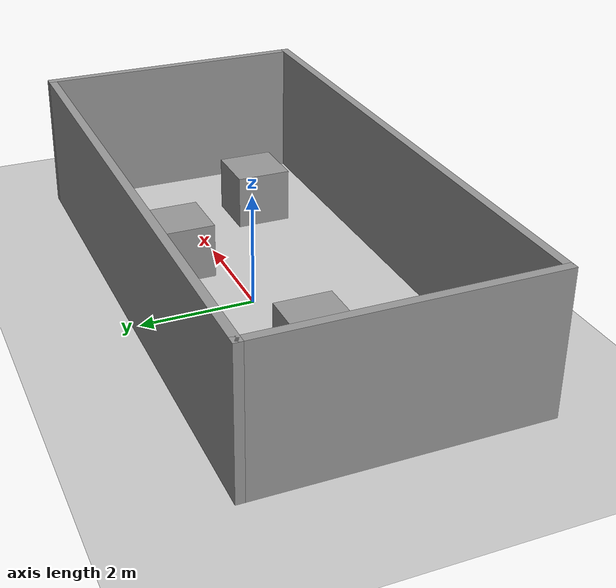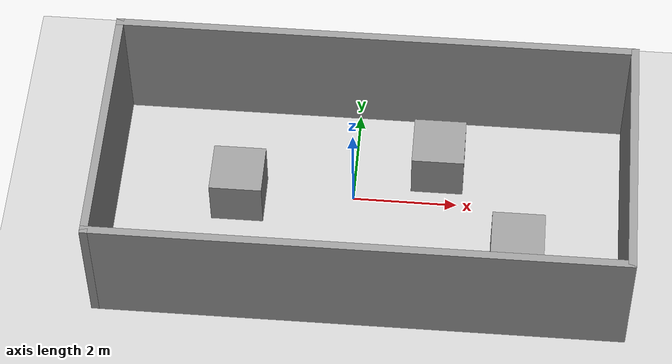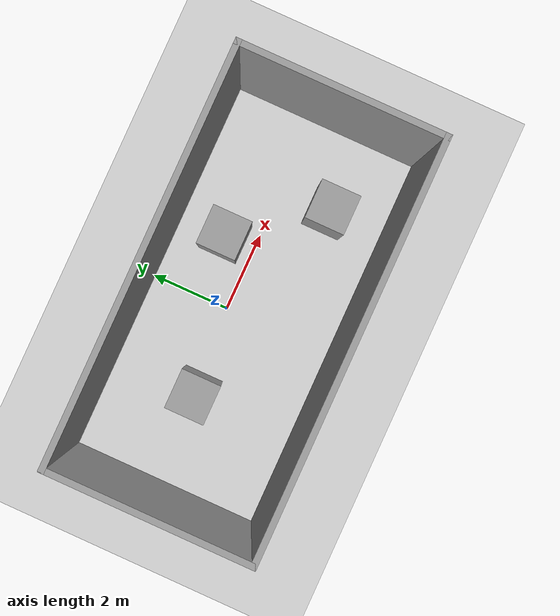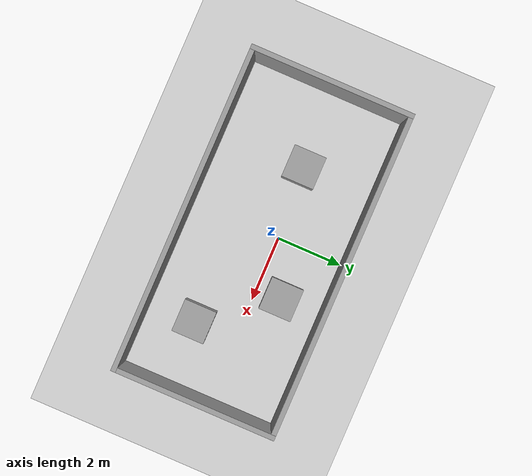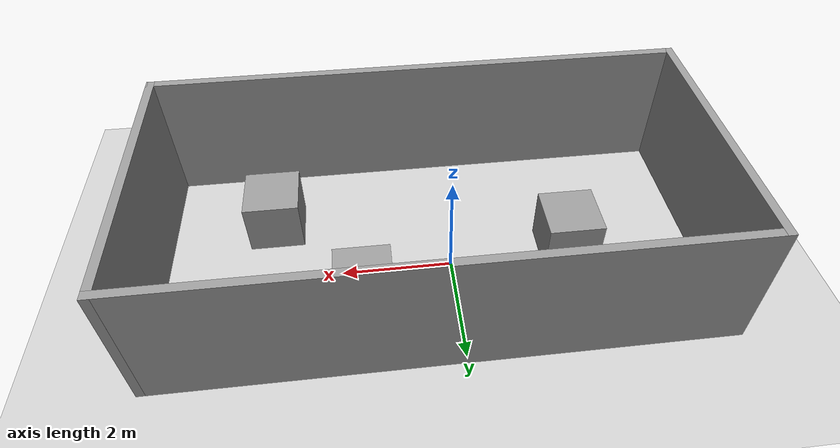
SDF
<sdf version="1.7">
 <world name="default">
  <light name="sun" type="directional">
   <pose>0 0 10 0 -0 0</pose>
   <diffuse>0.8 0.8 0.8 1</diffuse>
   <specular>0.2 0.2 0.2 1</specular>
   <attenuation>
    <range>1000</range>
    <constant>0.9</constant>
    <linear>0.01</linear>
    <quadratic>0.001</quadratic>
   </attenuation>
   <direction>-0.5 0.1 -0.9</direction>
   <spot><inner_angle>0</inner_angle><outer_angle>0</outer_angle><falloff>0</falloff></spot>
  </light>
  <model name="ground_plane">
   <static>1</static>
   <link name="link">
    <collision name="collision">
     <geometry><plane><normal>0 0 1</normal><size>100 100</size></plane></geometry>
     <surface><friction><ode><mu>100</mu><mu2>50</mu2></ode></friction></surface>
    </collision>
    <visual name="visual">
     <cast_shadows>0</cast_shadows>
     <geometry><plane><normal>0 0 1</normal><size>100 100</size></plane></geometry>
     <material>
      <script><uri>file://media/materials/scripts/gazebo.material</uri><name>Gazebo/Grey</name></script>
     </material>
    </visual>
   </link>
  </model>
  <gravity>0 0 -9.8</gravity>
  <magnetic_field>6e-06 2.3e-05 -4.2e-05</magnetic_field>
  <atmosphere type="adiabatic"/>
  <physics type="ode">
   <max_step_size>0.001</max_step_size>
   <real_time_factor>1</real_time_factor>
   <real_time_update_rate>1000</real_time_update_rate>
  </physics>
  <scene><ambient>0.4 0.4 0.4 1</ambient><background>0.7 0.7 0.7 1</background><shadows>1</shadows></scene>
  <audio><device>default</device></audio>
  <spherical_coordinates>
   <surface_model>EARTH_WGS84</surface_model>
   <latitude_deg>0</latitude_deg>
   <longitude_deg>0</longitude_deg>
   <elevation>0</elevation>
   <heading_deg>0</heading_deg>
  </spherical_coordinates>
  <model name="2">
   <pose>0.291674 2.66562 0 0 -0 0</pose>
   <link name="Wall_5">
    <collision name="Wall_5_Collision">
     <geometry><box><size>5 0.15 2.5</size></box></geometry>
     <pose>0 0 1.25 0 -0 0</pose>
    </collision>
    <visual name="Wall_5_Visual">
     <pose>0 0 1.25 0 -0 0</pose>
     <geometry><box><size>5 0.15 2.5</size></box></geometry>
     <material>
      <script><uri>file://media/materials/scripts/gazebo.material</uri><name>Gazebo/Grey</name></script>
      <ambient>1 1 1 1</ambient>
     </material>
     <meta><layer>0</layer></meta>
    </visual>
    <pose>-4.925 -3.0425 0 0 -0 -1.5708</pose>
   </link>
   <link name="Wall_6">
    <collision name="Wall_6_Collision">
     <geometry><box><size>10 0.15 2.5</size></box></geometry>
     <pose>0 0 1.25 0 -0 0</pose>
    </collision>
    <visual name="Wall_6_Visual">
     <pose>0 0 1.25 0 -0 0</pose>
     <geometry><box><size>10 0.15 2.5</size></box></geometry>
     <material>
      <script><uri>file://media/materials/scripts/gazebo.material</uri><name>Gazebo/Grey</name></script>
      <ambient>1 1 1 1</ambient>
     </material>
     <meta><layer>0</layer></meta>
    </visual>
    <pose>0 -5.4675 0 0 -0 0</pose>
   </link>
   <link name="Wall_7">
    <collision name="Wall_7_Collision">
     <geometry><box><size>5 0.15 2.5</size></box></geometry>
     <pose>0 0 1.25 0 -0 0</pose>
    </collision>
    <visual name="Wall_7_Visual">
     <pose>0 0 1.25 0 -0 0</pose>
     <geometry><box><size>5 0.15 2.5</size></box></geometry>
     <material>
      <script><uri>file://media/materials/scripts/gazebo.material</uri><name>Gazebo/Grey</name></script>
      <ambient>1 1 1 1</ambient>
     </material>
     <meta><layer>0</layer></meta>
    </visual>
    <pose>4.925 -3.0425 0 0 -0 1.5708</pose>
   </link>
   <link name="Wall_8">
    <collision name="Wall_8_Collision">
     <geometry><box><size>10 0.15 2.5</size></box></geometry>
     <pose>0 0 1.25 0 -0 0</pose>
    </collision>
    <visual name="Wall_8_Visual">
     <pose>0 0 1.25 0 -0 0</pose>
     <geometry><box><size>10 0.15 2.5</size></box></geometry>
     <material>
      <script><uri>file://media/materials/scripts/gazebo.material</uri><name>Gazebo/Grey</name></script>
      <ambient>1 1 1 1</ambient>
     </material>
     <meta><layer>0</layer></meta>
    </visual>
    <pose>0 -0.6175 0 0 -0 3.14159</pose>
   </link>
   <static>1</static>
  </model>
  <model name="unit_box">
   <pose>-2.19905 -0.151937 0.499995 0 1e-05 0</pose>
   <link name="link">
    <inertial>
     <mass>1</mass>
     <inertia>
      <ixx>0.166667</ixx>
      <ixy>0</ixy>
      <ixz>0</ixz>
      <iyy>0.166667</iyy>
      <iyz>0</iyz>
      <izz>0.166667</izz>
     </inertia>
    </inertial>
    <collision name="collision"><geometry><box><size>1 1 1</size></box></geometry></collision>
    <visual name="visual">
     <geometry><box><size>1 1 1</size></box></geometry>
     <material>
      <script><name>Gazebo/Grey</name><uri>file://media/materials/scripts/gazebo.material</uri></script>
     </material>
    </visual>
   </link>
  </model>
  <model name="unit_box_0">
   <pose>1.60097 0.772699 0.499995 -1e-05 -0 0</pose>
   <link name="link">
    <inertial>
     <mass>1</mass>
     <inertia>
      <ixx>0.166667</ixx>
      <ixy>0</ixy>
      <ixz>0</ixz>
      <iyy>0.166667</iyy>
      <iyz>0</iyz>
      <izz>0.166667</izz>
     </inertia>
    </inertial>
    <collision name="collision"><geometry><box><size>1 1 1</size></box></geometry></collision>
    <visual name="visual">
     <geometry><box><size>1 1 1</size></box></geometry>
     <material>
      <script><name>Gazebo/Grey</name><uri>file://media/materials/scripts/gazebo.material</uri></script>
     </material>
    </visual>
   </link>
  </model>
  <model name="unit_box_1">
   <pose>3.19949 -1.29972 0.5 0 -0 0</pose>
   <link name="link">
    <inertial>
     <mass>1</mass>
     <inertia>
      <ixx>0.166667</ixx>
      <ixy>0</ixy>
      <ixz>0</ixz>
      <iyy>0.166667</iyy>
      <iyz>0</iyz>
      <izz>0.166667</izz>
     </inertia>
    </inertial>
    <collision name="collision"><geometry><box><size>1 1 1</size></box></geometry></collision>
    <visual name="visual">
     <geometry><box><size>1 1 1</size></box></geometry>
     <material>
      <script><name>Gazebo/Grey</name><uri>file://media/materials/scripts/gazebo.material</uri></script>
     </material>
    </visual>
   </link>
  </model>
 </world>
</sdf>
